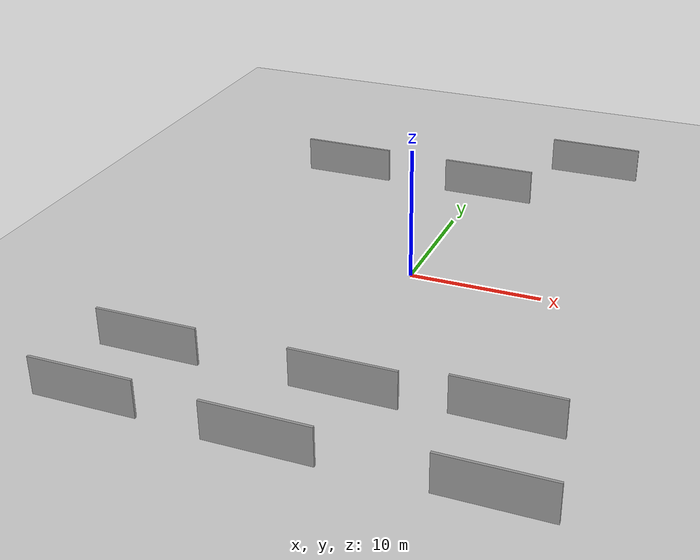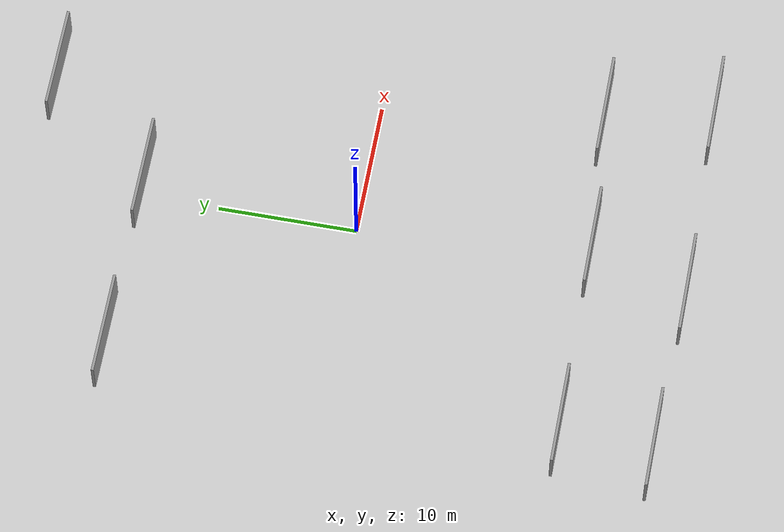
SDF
<sdf version="1.6">
 <world name="default">
  <model name="ground_plane">
   <static>1</static>
   <link name="link">
    <collision name="collision">
     <geometry><plane><normal>0 0 1</normal><size>100 100</size></plane></geometry>
     <surface><friction><ode><mu>100</mu><mu2>50</mu2></ode></friction></surface>
    </collision>
    <visual name="visual">
     <cast_shadows>0</cast_shadows>
     <geometry><plane><normal>0 0 1</normal><size>100 100</size></plane></geometry>
     <material>
      <script><uri>file://media/materials/scripts/gazebo.material</uri><name>Gazebo/Grey</name></script>
     </material>
    </visual>
   </link>
  </model>
  <light name="sun" type="directional">
   <pose>0 0 10 0 -0 0</pose>
   <diffuse>0.8 0.8 0.8 1</diffuse>
   <specular>0.2 0.2 0.2 1</specular>
   <attenuation>
    <range>1000</range>
    <constant>0.9</constant>
    <linear>0.01</linear>
    <quadratic>0.001</quadratic>
   </attenuation>
   <direction>-0.5 0.1 -0.9</direction>
  </light>
  <gravity>0 0 -9.8</gravity>
  <magnetic_field>6e-06 2.3e-05 -4.2e-05</magnetic_field>
  <atmosphere type="adiabatic"/>
  <physics name="default_physics" default="0" type="ode">
   <max_step_size>0.001</max_step_size>
   <real_time_factor>1</real_time_factor>
   <real_time_update_rate>1000</real_time_update_rate>
  </physics>
  <scene><ambient>0.4 0.4 0.4 1</ambient><background>0.7 0.7 0.7 1</background><shadows>1</shadows></scene>
  <audio><device>default</device></audio>
  <spherical_coordinates>
   <surface_model>EARTH_WGS84</surface_model>
   <latitude_deg>0</latitude_deg>
   <longitude_deg>0</longitude_deg>
   <elevation>0</elevation>
   <heading_deg>0</heading_deg>
  </spherical_coordinates>
  <model name="grey_wall">
   <static>1</static>
   <link name="link">
    <pose>0 0 1.4 0 -0 0</pose>
    <collision name="collision"><geometry><box><size>7.5 0.2 2.8</size></box></geometry></collision>
    <visual name="visual">
     <cast_shadows>0</cast_shadows>
     <geometry><box><size>7.5 0.2 2.8</size></box></geometry>
     <material>
      <script>
       <uri>model://grey_wall/materials/scripts</uri>
       <uri>model://grey_wall/materials/textures</uri>
       <name>vrc/grey_wall</name>
      </script>
     </material>
    </visual>
   </link>
   <pose>-12.4831 -16.7845 0 0 -0 0</pose>
  </model>
  <model name="grey_wall_clone">
   <static>1</static>
   <link name="link">
    <pose>0 0 1.4 0 -0 0</pose>
    <collision name="collision"><geometry><box><size>7.5 0.2 2.8</size></box></geometry></collision>
    <visual name="visual">
     <cast_shadows>0</cast_shadows>
     <geometry><box><size>7.5 0.2 2.8</size></box></geometry>
     <material>
      <script>
       <uri>model://grey_wall/materials/scripts</uri>
       <uri>model://grey_wall/materials/textures</uri>
       <name>vrc/grey_wall</name>
      </script>
     </material>
    </visual>
   </link>
   <pose>-13.1161 -23.4958 0 0 -0 0</pose>
  </model>
  <model name="grey_wall_clone_0">
   <static>1</static>
   <link name="link">
    <pose>0 0 1.4 0 -0 0</pose>
    <collision name="collision"><geometry><box><size>7.5 0.2 2.8</size></box></geometry></collision>
    <visual name="visual">
     <cast_shadows>0</cast_shadows>
     <geometry><box><size>7.5 0.2 2.8</size></box></geometry>
     <material>
      <script>
       <uri>model://grey_wall/materials/scripts</uri>
       <uri>model://grey_wall/materials/textures</uri>
       <name>vrc/grey_wall</name>
      </script>
     </material>
    </visual>
   </link>
   <pose>-0.875297 -23.9138 0 0 -0 0</pose>
  </model>
  <model name="grey_wall_clone_1">
   <static>1</static>
   <link name="link">
    <pose>0 0 1.4 0 -0 0</pose>
    <collision name="collision"><geometry><box><size>7.5 0.2 2.8</size></box></geometry></collision>
    <visual name="visual">
     <cast_shadows>0</cast_shadows>
     <geometry><box><size>7.5 0.2 2.8</size></box></geometry>
     <material>
      <script>
       <uri>model://grey_wall/materials/scripts</uri>
       <uri>model://grey_wall/materials/textures</uri>
       <name>vrc/grey_wall</name>
      </script>
     </material>
    </visual>
   </link>
   <pose>1.56628 -16.7371 0 0 -0 0</pose>
  </model>
  <model name="grey_wall_clone_2">
   <static>1</static>
   <link name="link">
    <pose>0 0 1.4 0 -0 0</pose>
    <collision name="collision"><geometry><box><size>7.5 0.2 2.8</size></box></geometry></collision>
    <visual name="visual">
     <cast_shadows>0</cast_shadows>
     <geometry><box><size>7.5 0.2 2.8</size></box></geometry>
     <material>
      <script>
       <uri>model://grey_wall/materials/scripts</uri>
       <uri>model://grey_wall/materials/textures</uri>
       <name>vrc/grey_wall</name>
      </script>
     </material>
    </visual>
   </link>
   <pose>13.5963 -23.6938 0 0 -0 0</pose>
  </model>
  <model name="grey_wall_clone_3">
   <static>1</static>
   <link name="link">
    <pose>0 0 1.4 0 -0 0</pose>
    <collision name="collision"><geometry><box><size>7.5 0.2 2.8</size></box></geometry></collision>
    <visual name="visual">
     <cast_shadows>0</cast_shadows>
     <geometry><box><size>7.5 0.2 2.8</size></box></geometry>
     <material>
      <script>
       <uri>model://grey_wall/materials/scripts</uri>
       <uri>model://grey_wall/materials/textures</uri>
       <name>vrc/grey_wall</name>
      </script>
     </material>
    </visual>
   </link>
   <pose>12.0457 -15.9312 0 0 -0 0</pose>
  </model>
  <model name="grey_wall_0">
   <static>1</static>
   <link name="link">
    <pose>0 0 1.4 0 -0 0</pose>
    <collision name="collision"><geometry><box><size>7.5 0.2 2.8</size></box></geometry></collision>
    <visual name="visual">
     <cast_shadows>0</cast_shadows>
     <geometry><box><size>7.5 0.2 2.8</size></box></geometry>
     <material>
      <script>
       <uri>model://grey_wall/materials/scripts</uri>
       <uri>model://grey_wall/materials/textures</uri>
       <name>vrc/grey_wall</name>
      </script>
     </material>
    </visual>
   </link>
   <pose>-11.5805 15.8164 0 0 -0 0</pose>
  </model>
  <model name="grey_wall_clone_4">
   <static>1</static>
   <link name="link">
    <pose>0 0 1.4 0 -0 0</pose>
    <collision name="collision"><geometry><box><size>7.5 0.2 2.8</size></box></geometry></collision>
    <visual name="visual">
     <cast_shadows>0</cast_shadows>
     <geometry><box><size>7.5 0.2 2.8</size></box></geometry>
     <material>
      <script>
       <uri>model://grey_wall/materials/scripts</uri>
       <uri>model://grey_wall/materials/textures</uri>
       <name>vrc/grey_wall</name>
      </script>
     </material>
    </visual>
   </link>
   <pose>1.14423 15.685 0 0 -0 0</pose>
  </model>
  <model name="grey_wall_clone_5">
   <static>1</static>
   <link name="link">
    <pose>0 0 1.4 0 -0 0</pose>
    <collision name="collision"><geometry><box><size>7.5 0.2 2.8</size></box></geometry></collision>
    <visual name="visual">
     <cast_shadows>0</cast_shadows>
     <geometry><box><size>7.5 0.2 2.8</size></box></geometry>
     <material>
      <script>
       <uri>model://grey_wall/materials/scripts</uri>
       <uri>model://grey_wall/materials/textures</uri>
       <name>vrc/grey_wall</name>
      </script>
     </material>
    </visual>
   </link>
   <pose>8.56945 23.53 0 0 -0 0</pose>
  </model>
 </world>
</sdf>
